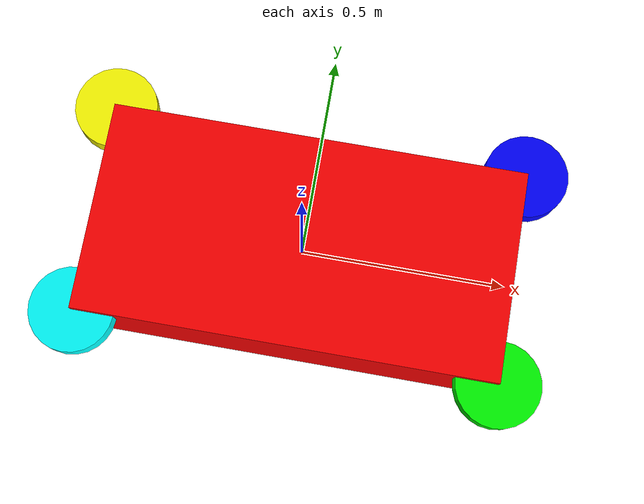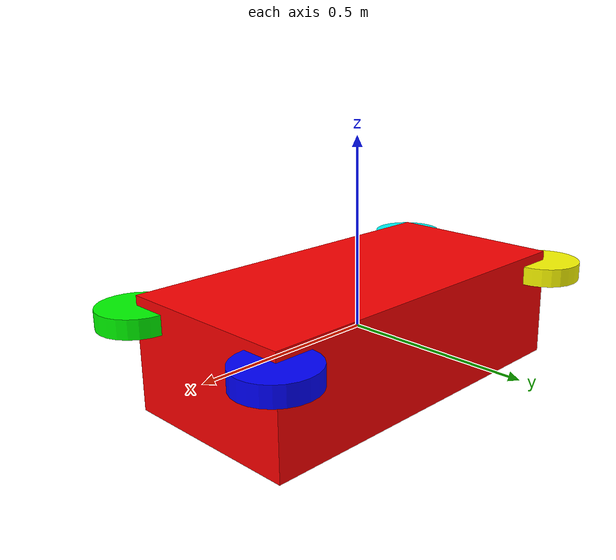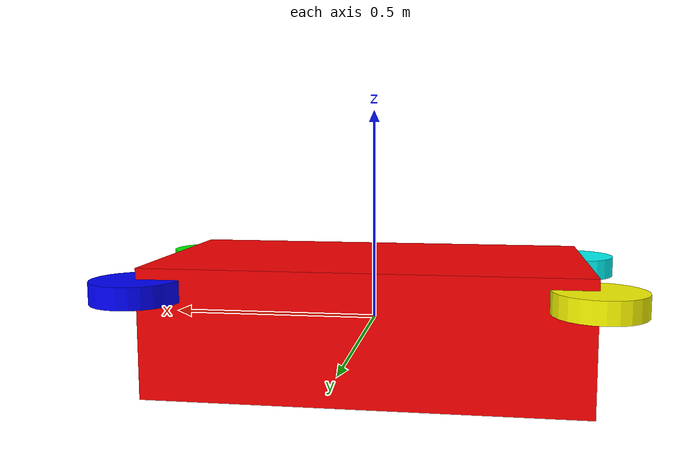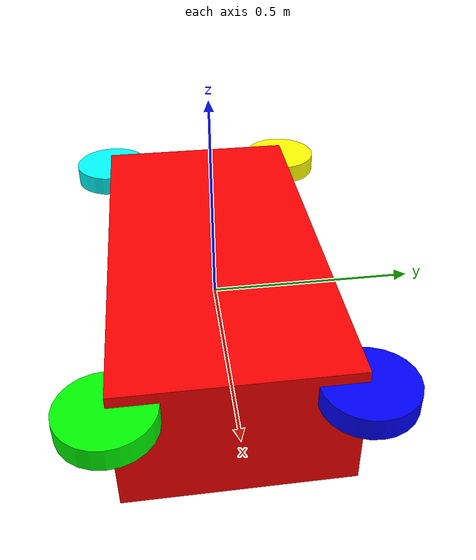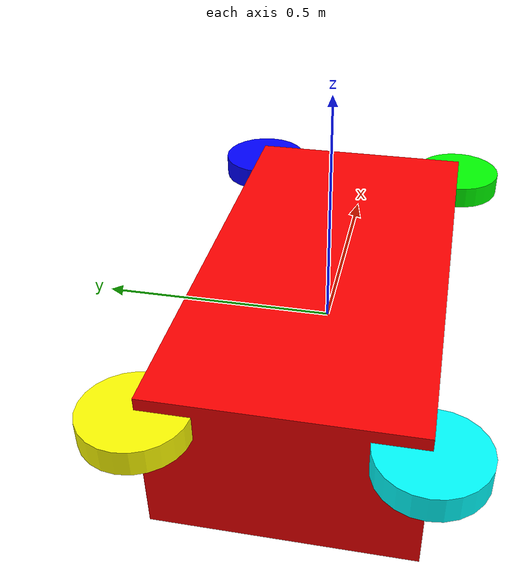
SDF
<?xml version="1.0"?>
<sdf version="1.6">
  <model name="simple_diff_drive">
    <pose>0 0 0 0 0 0</pose>

    <!-- Chassis -->
    <link name="chassis">
      <pose>0 0 0 0 0 0</pose>
      <collision name="chassis_collision">
        <geometry>
          <box>
            <size>1 0.5 0.3</size>
          </box>
        </geometry>
      </collision>
      <visual name="chassis_visual">
        <geometry>
          <box>
            <size>1 0.5 0.3</size>
          </box>
        </geometry>
        <material>
          <ambient>1 0 0 1</ambient>
          <diffuse>1 0 0 1</diffuse>
        </material>
      </visual>
    </link>

    <!-- Left Wheels -->
    <link name="left_wheel">
      <pose>0.5 -0.25 0.1 0 0 0</pose>
      <collision name="left_wheel_collision">
        <geometry>
          <cylinder>
            <radius>0.1</radius>
            <length>0.05</length>
          </cylinder>
        </geometry>
      </collision>
      <visual name="left_wheel_visual">
        <geometry>
          <cylinder>
            <radius>0.1</radius>
            <length>0.05</length>
          </cylinder>
        </geometry>
        <material>
          <ambient>0 1 0 1</ambient>
          <diffuse>0 1 0 1</diffuse>
        </material>
      </visual>
    </link>

    <link name="right_wheel">
      <pose>0.5 0.25 0.1 0 0 0</pose>
      <collision name="right_wheel_collision">
        <geometry>
          <cylinder>
            <radius>0.1</radius>
            <length>0.05</length>
          </cylinder>
        </geometry>
      </collision>
      <visual name="right_wheel_visual">
        <geometry>
          <cylinder>
            <radius>0.1</radius>
            <length>0.05</length>
          </cylinder>
        </geometry>
        <material>
          <ambient>0 0 1 1</ambient>
          <diffuse>0 0 1 1</diffuse>
        </material>
      </visual>
    </link>

    <!-- Right Wheels -->
    <link name="left_wheel_rear">
      <pose>-0.5 -0.25 0.1 0 0 0</pose>
      <collision name="left_wheel_rear_collision">
        <geometry>
          <cylinder>
            <radius>0.1</radius>
            <length>0.05</length>
          </cylinder>
        </geometry>
      </collision>
      <visual name="left_wheel_rear_visual">
        <geometry>
          <cylinder>
            <radius>0.1</radius>
            <length>0.05</length>
          </cylinder>
        </geometry>
        <material>
          <ambient>0 1 1 1</ambient>
          <diffuse>0 1 1 1</diffuse>
        </material>
      </visual>
    </link>

    <link name="right_wheel_rear">
      <pose>-0.5 0.25 0.1 0 0 0</pose>
      <collision name="right_wheel_rear_collision">
        <geometry>
          <cylinder>
            <radius>0.1</radius>
            <length>0.05</length>
          </cylinder>
        </geometry>
      </collision>
      <visual name="right_wheel_rear_visual">
        <geometry>
          <cylinder>
            <radius>0.1</radius>
            <length>0.05</length>
          </cylinder>
        </geometry>
        <material>
          <ambient>1 1 0 1</ambient>
          <diffuse>1 1 0 1</diffuse>
        </material>
      </visual>
    </link>

    <!-- Joints -->
    <joint name="left_wheel_joint" type="revolute">
      <pose>0.5 -0.25 0.1 0 0 0</pose>
      <parent>chassis</parent>
      <child>left_wheel</child>
      <axis>
        <xyz>0 1 0</xyz>
      </axis>
      <limit>
        <lower>-10</lower>
        <upper>10</upper>
      </limit>
    </joint>

    <joint name="right_wheel_joint" type="revolute">
      <pose>0.5 0.25 0.1 0 0 0</pose>
      <parent>chassis</parent>
      <child>right_wheel</child>
      <axis>
        <xyz>0 1 0</xyz>
      </axis>
      <limit>
        <lower>-10</lower>
        <upper>10</upper>
      </limit>
    </joint>

    <joint name="left_wheel_rear_joint" type="revolute">
      <pose>-0.5 -0.25 0.1 0 0 0</pose>
      <parent>chassis</parent>
      <child>left_wheel_rear</child>
      <axis>
        <xyz>0 1 0</xyz>
      </axis>
      <limit>
        <lower>-10</lower>
        <upper>10</upper>
      </limit>
    </joint>

    <joint name="right_wheel_rear_joint" type="revolute">
      <pose>-0.5 0.25 0.1 0 0 0</pose>
      <parent>chassis</parent>
      <child>right_wheel_rear</child>
      <axis>
        <xyz>0 1 0</xyz>
      </axis>
      <limit>
        <lower>-10</lower>
        <upper>10</upper>
      </limit>
    </joint>

  </model>
</sdf>
